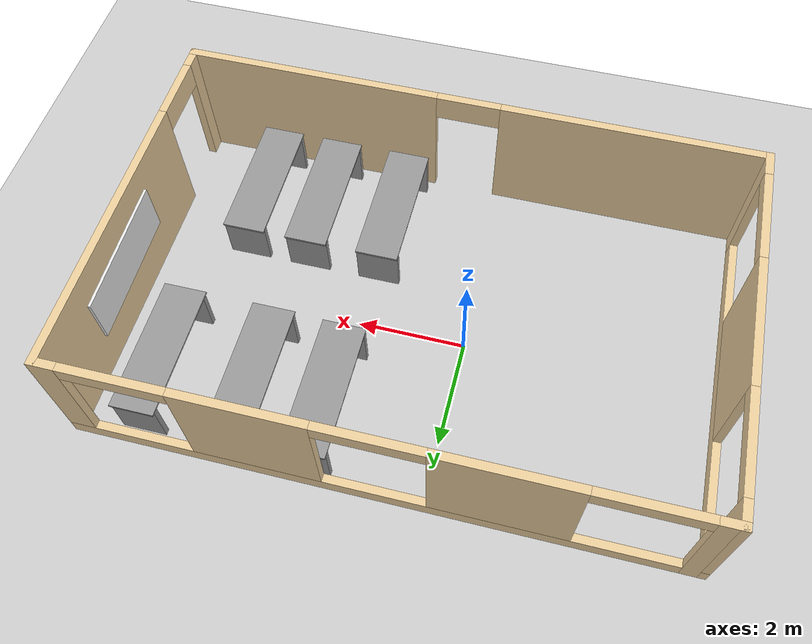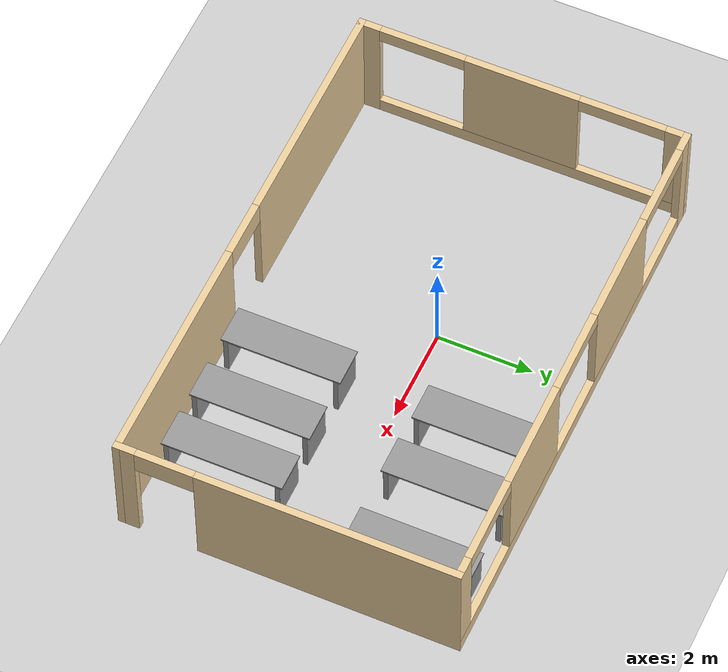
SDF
<sdf version="1.6">
 <world name="default">
  <model name="ground_plane">
   <static>1</static>
   <link name="link">
    <collision name="collision">
     <geometry><plane><normal>0 0 1</normal><size>100 100</size></plane></geometry>
     <surface><friction><ode><mu>100</mu><mu2>50</mu2></ode></friction></surface>
    </collision>
    <visual name="visual">
     <cast_shadows>0</cast_shadows>
     <geometry><plane><normal>0 0 1</normal><size>100 100</size></plane></geometry>
     <material>
      <script><uri>file://media/materials/scripts/gazebo.material</uri><name>Gazebo/Grey</name></script>
     </material>
    </visual>
   </link>
  </model>
  <model name="labAlfa4">
   <pose>0.76702 -0.263718 0 0 -0 0</pose>
   <link name="Wall_25">
    <pose>-5.425 0 0 0 -0 1.5708</pose>
    <visual name="Wall_25_Visual_0">
     <pose>-3.25328 0 1.25 0 -0 0</pose>
     <geometry><box><size>0.493444 0.15 2.5</size></box></geometry>
     <material>
      <script><uri>file://media/materials/scripts/gazebo.material</uri><name>Gazebo/Grey</name></script>
      <ambient>0.921569 0.807843 0.615686 1</ambient>
     </material>
    </visual>
    <collision name="Wall_25_Collision_0">
     <geometry><box><size>0.493444 0.15 2.5</size></box></geometry>
     <pose>-3.25328 0 1.25 0 -0 0</pose>
    </collision>
    <visual name="Wall_25_Visual_1">
     <pose>0.246722 0 0.15 0 -0 0</pose>
     <geometry><box><size>6.50656 0.15 0.3</size></box></geometry>
     <material>
      <script><uri>file://media/materials/scripts/gazebo.material</uri><name>Gazebo/Grey</name></script>
      <ambient>0.921569 0.807843 0.615686 1</ambient>
     </material>
    </visual>
    <collision name="Wall_25_Collision_1">
     <geometry><box><size>6.50656 0.15 0.3</size></box></geometry>
     <pose>0.246722 0 0.15 0 -0 0</pose>
    </collision>
    <visual name="Wall_25_Visual_2">
     <pose>-0.00167 0 1.4 0 -0 0</pose>
     <geometry><box><size>2.40977 0.15 2.2</size></box></geometry>
     <material>
      <script><uri>file://media/materials/scripts/gazebo.material</uri><name>Gazebo/Grey</name></script>
      <ambient>0.921569 0.807843 0.615686 1</ambient>
     </material>
    </visual>
    <collision name="Wall_25_Collision_2">
     <geometry><box><size>2.40977 0.15 2.2</size></box></geometry>
     <pose>-0.00167 0 1.4 0 -0 0</pose>
    </collision>
    <visual name="Wall_25_Visual_3">
     <pose>3.25161 0 1.4 0 -0 0</pose>
     <geometry><box><size>0.496785 0.15 2.2</size></box></geometry>
     <material>
      <script><uri>file://media/materials/scripts/gazebo.material</uri><name>Gazebo/Grey</name></script>
      <ambient>0.921569 0.807843 0.615686 1</ambient>
     </material>
    </visual>
    <collision name="Wall_25_Collision_3">
     <geometry><box><size>0.496785 0.15 2.2</size></box></geometry>
     <pose>3.25161 0 1.4 0 -0 0</pose>
    </collision>
    <visual name="Wall_25_Visual_4">
     <pose>-2.10656 0 2.35 0 -0 0</pose>
     <geometry><box><size>1.8 0.15 0.3</size></box></geometry>
     <material>
      <script><uri>file://media/materials/scripts/gazebo.material</uri><name>Gazebo/Grey</name></script>
      <ambient>0.921569 0.807843 0.615686 1</ambient>
     </material>
    </visual>
    <collision name="Wall_25_Collision_4">
     <geometry><box><size>1.8 0.15 0.3</size></box></geometry>
     <pose>-2.10656 0 2.35 0 -0 0</pose>
    </collision>
    <visual name="Wall_25_Visual_5">
     <pose>2.10322 0 2.35 0 -0 0</pose>
     <geometry><box><size>1.8 0.15 0.3</size></box></geometry>
     <material>
      <script><uri>file://media/materials/scripts/gazebo.material</uri><name>Gazebo/Grey</name></script>
      <ambient>0.921569 0.807843 0.615686 1</ambient>
     </material>
    </visual>
    <collision name="Wall_25_Collision_5">
     <geometry><box><size>1.8 0.15 0.3</size></box></geometry>
     <pose>2.10322 0 2.35 0 -0 0</pose>
    </collision>
   </link>
   <link name="Wall_26">
    <pose>0 3.425 0 0 -0 0</pose>
    <visual name="Wall_26_Visual_0">
     <pose>-5.27641 0 1.25 0 -0 0</pose>
     <geometry><box><size>0.447183 0.15 2.5</size></box></geometry>
     <material>
      <script><uri>file://media/materials/scripts/gazebo.material</uri><name>Gazebo/Grey</name></script>
      <ambient>0.921569 0.807843 0.615686 1</ambient>
     </material>
    </visual>
    <collision name="Wall_26_Collision_0">
     <geometry><box><size>0.447183 0.15 2.5</size></box></geometry>
     <pose>-5.27641 0 1.25 0 -0 0</pose>
    </collision>
    <visual name="Wall_26_Visual_1">
     <pose>0.223592 0 0.15 0 -0 0</pose>
     <geometry><box><size>10.5528 0.15 0.3</size></box></geometry>
     <material>
      <script><uri>file://media/materials/scripts/gazebo.material</uri><name>Gazebo/Grey</name></script>
      <ambient>0.921569 0.807843 0.615686 1</ambient>
     </material>
    </visual>
    <collision name="Wall_26_Collision_1">
     <geometry><box><size>10.5528 0.15 0.3</size></box></geometry>
     <pose>0.223592 0 0.15 0 -0 0</pose>
    </collision>
    <visual name="Wall_26_Visual_2">
     <pose>-2.04793 0 1.4 0 -0 0</pose>
     <geometry><box><size>2.40977 0.15 2.2</size></box></geometry>
     <material>
      <script><uri>file://media/materials/scripts/gazebo.material</uri><name>Gazebo/Grey</name></script>
      <ambient>0.921569 0.807843 0.615686 1</ambient>
     </material>
    </visual>
    <collision name="Wall_26_Collision_2">
     <geometry><box><size>2.40977 0.15 2.2</size></box></geometry>
     <pose>-2.04793 0 1.4 0 -0 0</pose>
    </collision>
    <visual name="Wall_26_Visual_3">
     <pose>2.09245 0 1.4 0 -0 0</pose>
     <geometry><box><size>2.27099 0.15 2.2</size></box></geometry>
     <material>
      <script><uri>file://media/materials/scripts/gazebo.material</uri><name>Gazebo/Grey</name></script>
      <ambient>0.921569 0.807843 0.615686 1</ambient>
     </material>
    </visual>
    <collision name="Wall_26_Collision_3">
     <geometry><box><size>2.27099 0.15 2.2</size></box></geometry>
     <pose>2.09245 0 1.4 0 -0 0</pose>
    </collision>
    <visual name="Wall_26_Visual_4">
     <pose>5.26397 0 1.4 0 -0 0</pose>
     <geometry><box><size>0.472059 0.15 2.2</size></box></geometry>
     <material>
      <script><uri>file://media/materials/scripts/gazebo.material</uri><name>Gazebo/Grey</name></script>
      <ambient>0.921569 0.807843 0.615686 1</ambient>
     </material>
    </visual>
    <collision name="Wall_26_Collision_4">
     <geometry><box><size>0.472059 0.15 2.2</size></box></geometry>
     <pose>5.26397 0 1.4 0 -0 0</pose>
    </collision>
    <visual name="Wall_26_Visual_5">
     <pose>-4.15282 0 2.35 0 -0 0</pose>
     <geometry><box><size>1.8 0.15 0.3</size></box></geometry>
     <material>
      <script><uri>file://media/materials/scripts/gazebo.material</uri><name>Gazebo/Grey</name></script>
      <ambient>0.921569 0.807843 0.615686 1</ambient>
     </material>
    </visual>
    <collision name="Wall_26_Collision_5">
     <geometry><box><size>1.8 0.15 0.3</size></box></geometry>
     <pose>-4.15282 0 2.35 0 -0 0</pose>
    </collision>
    <visual name="Wall_26_Visual_6">
     <pose>0.056954 0 2.35 0 -0 0</pose>
     <geometry><box><size>1.8 0.15 0.3</size></box></geometry>
     <material>
      <script><uri>file://media/materials/scripts/gazebo.material</uri><name>Gazebo/Grey</name></script>
      <ambient>0.921569 0.807843 0.615686 1</ambient>
     </material>
    </visual>
    <collision name="Wall_26_Collision_6">
     <geometry><box><size>1.8 0.15 0.3</size></box></geometry>
     <pose>0.056954 0 2.35 0 -0 0</pose>
    </collision>
    <visual name="Wall_26_Visual_7">
     <pose>4.12794 0 2.35 0 -0 0</pose>
     <geometry><box><size>1.8 0.15 0.3</size></box></geometry>
     <material>
      <script><uri>file://media/materials/scripts/gazebo.material</uri><name>Gazebo/Grey</name></script>
      <ambient>0.921569 0.807843 0.615686 1</ambient>
     </material>
    </visual>
    <collision name="Wall_26_Collision_7">
     <geometry><box><size>1.8 0.15 0.3</size></box></geometry>
     <pose>4.12794 0 2.35 0 -0 0</pose>
    </collision>
   </link>
   <link name="Wall_27">
    <pose>5.425 0 0 0 0 -1.5708</pose>
    <visual name="Wall_27_Visual_0">
     <pose>-0.823243 0 1.25 0 -0 0</pose>
     <geometry><box><size>5.35351 0.15 2.5</size></box></geometry>
     <material>
      <script><uri>file://media/materials/scripts/gazebo.material</uri><name>Gazebo/Grey</name></script>
      <ambient>0.921569 0.807843 0.615686 1</ambient>
     </material>
    </visual>
    <collision name="Wall_27_Collision_0">
     <geometry><box><size>5.35351 0.15 2.5</size></box></geometry>
     <pose>-0.823243 0 1.25 0 -0 0</pose>
    </collision>
    <visual name="Wall_27_Visual_1">
     <pose>3.27676 0 1.25 0 -0 0</pose>
     <geometry><box><size>0.446485 0.15 2.5</size></box></geometry>
     <material>
      <script><uri>file://media/materials/scripts/gazebo.material</uri><name>Gazebo/Grey</name></script>
      <ambient>0.921569 0.807843 0.615686 1</ambient>
     </material>
    </visual>
    <collision name="Wall_27_Collision_1">
     <geometry><box><size>0.446485 0.15 2.5</size></box></geometry>
     <pose>3.27676 0 1.25 0 -0 0</pose>
    </collision>
    <visual name="Wall_27_Visual_2">
     <pose>2.45351 0 2.25 0 -0 0</pose>
     <geometry><box><size>1.2 0.15 0.5</size></box></geometry>
     <material>
      <script><uri>file://media/materials/scripts/gazebo.material</uri><name>Gazebo/Grey</name></script>
      <ambient>0.921569 0.807843 0.615686 1</ambient>
     </material>
    </visual>
    <collision name="Wall_27_Collision_2">
     <geometry><box><size>1.2 0.15 0.5</size></box></geometry>
     <pose>2.45351 0 2.25 0 -0 0</pose>
    </collision>
   </link>
   <link name="Wall_28">
    <pose>0 -3.425 0 0 -0 3.14159</pose>
    <visual name="Wall_28_Visual_0">
     <pose>-3.06691 0 1.25 0 -0 0</pose>
     <geometry><box><size>4.86618 0.15 2.5</size></box></geometry>
     <material>
      <script><uri>file://media/materials/scripts/gazebo.material</uri><name>Gazebo/Grey</name></script>
      <ambient>0.921569 0.807843 0.615686 1</ambient>
     </material>
    </visual>
    <collision name="Wall_28_Collision_0">
     <geometry><box><size>4.86618 0.15 2.5</size></box></geometry>
     <pose>-3.06691 0 1.25 0 -0 0</pose>
    </collision>
    <visual name="Wall_28_Visual_1">
     <pose>3.03309 0 1.25 0 -0 0</pose>
     <geometry><box><size>4.93382 0.15 2.5</size></box></geometry>
     <material>
      <script><uri>file://media/materials/scripts/gazebo.material</uri><name>Gazebo/Grey</name></script>
      <ambient>0.921569 0.807843 0.615686 1</ambient>
     </material>
    </visual>
    <collision name="Wall_28_Collision_1">
     <geometry><box><size>4.93382 0.15 2.5</size></box></geometry>
     <pose>3.03309 0 1.25 0 -0 0</pose>
    </collision>
    <visual name="Wall_28_Visual_2">
     <pose>-0.033823 0 2.25 0 -0 0</pose>
     <geometry><box><size>1.2 0.15 0.5</size></box></geometry>
     <material>
      <script><uri>file://media/materials/scripts/gazebo.material</uri><name>Gazebo/Grey</name></script>
      <ambient>0.921569 0.807843 0.615686 1</ambient>
     </material>
    </visual>
    <collision name="Wall_28_Collision_2">
     <geometry><box><size>1.2 0.15 0.5</size></box></geometry>
     <pose>-0.033823 0 2.25 0 -0 0</pose>
    </collision>
   </link>
   <static>1</static>
  </model>
  <model name="table_clone_2_clone">
   <link name="link">
    <inertial>
     <inertia><ixx>1</ixx><ixy>0</ixy><ixz>0</ixz><iyy>1</iyy><iyz>0</iyz><izz>1</izz></inertia>
     <mass>10</mass>
    </inertial>
    <visual name="visual1">
     <pose>0 0 0.95 0 -0 0</pose>
     <geometry><box><size>2.5 0.8 0.04</size></box></geometry>
     <material>
      <script><uri>file://media/materials/scripts/gazebo.material</uri><name>Gazebo/Grey</name></script>
      <ambient>1 1 1 1</ambient>
      <diffuse>1 1 1 1</diffuse>
      <specular>0.2 0.2 0.2 1</specular>
      <emissive>0 0 0 1</emissive>
      <shader type="vertex"><normal_map>__default__</normal_map></shader>
     </material>
    </visual>
    <visual name="ModelPreview_1::link::visual_12">
     <pose>1.15 0 0.5 0 -0 0</pose>
     <geometry><box><size>0.1 0.8 0.9</size></box></geometry>
     <material>
      <script><uri>file://media/materials/scripts/gazebo.material</uri><name>Gazebo/Grey</name></script>
      <ambient>0.3 0.3 0.3 1</ambient>
      <diffuse>0.7 0.7 0.7 1</diffuse>
      <specular>0.01 0.01 0.01 1</specular>
      <emissive>0 0 0 1</emissive>
      <shader type="vertex"><normal_map>__default__</normal_map></shader>
     </material>
    </visual>
    <visual name="back_right_leg">
     <pose>-1.15 0 0.5 0 -0 0</pose>
     <geometry><box><size>0.1 0.8 0.9</size></box></geometry>
     <material>
      <script><uri>file://media/materials/scripts/gazebo.material</uri><name>Gazebo/Grey</name></script>
      <ambient>0.3 0.3 0.3 1</ambient>
      <diffuse>0.7 0.7 0.7 1</diffuse>
      <specular>0.01 0.01 0.01 1</specular>
      <emissive>0 0 0 1</emissive>
      <shader type="vertex"><normal_map>__default__</normal_map></shader>
     </material>
    </visual>
    <collision name="collision_7">
     <pose>1.15 0 0.5 0 -0 0</pose>
     <geometry><box><size>0.1 0.8 0.9</size></box></geometry>
     <surface>
      <friction>
       <ode><mu>1</mu><mu2>1</mu2><fdir1>0 0 0</fdir1><slip1>0</slip1><slip2>0</slip2></ode>
       <torsional>
        <coefficient>1</coefficient>
        <patch_radius>0</patch_radius>
        <surface_radius>0</surface_radius>
        <use_patch_radius>1</use_patch_radius>
        <ode><slip>0</slip></ode>
       </torsional>
      </friction>
      <bounce><restitution_coefficient>0</restitution_coefficient><threshold>1e+06</threshold></bounce>
      <contact>
       <collide_without_contact>0</collide_without_contact>
       <collide_without_contact_bitmask>1</collide_without_contact_bitmask>
       <collide_bitmask>1</collide_bitmask>
       <ode>
        <soft_cfm>0</soft_cfm>
        <soft_erp>0.2</soft_erp>
        <kp>1e+13</kp>
        <kd>1</kd>
        <max_vel>0.01</max_vel>
        <min_depth>0</min_depth>
       </ode>
       <bullet>
        <split_impulse>1</split_impulse>
        <split_impulse_penetration_threshold>-0.01</split_impulse_penetration_threshold>
        <soft_cfm>0</soft_cfm>
        <soft_erp>0.2</soft_erp>
        <kp>1e+13</kp>
        <kd>1</kd>
       </bullet>
      </contact>
     </surface>
    </collision>
    <collision name="surface">
     <pose>0 0 0.95 0 -0 0</pose>
     <geometry><box><size>2.5 0.8 0.03</size></box></geometry>
     <surface>
      <friction>
       <ode><mu>0.6</mu><mu2>0.6</mu2><fdir1>0 0 0</fdir1><slip1>0</slip1><slip2>0</slip2></ode>
       <torsional>
        <coefficient>1</coefficient>
        <patch_radius>0</patch_radius>
        <surface_radius>0</surface_radius>
        <use_patch_radius>1</use_patch_radius>
        <ode><slip>0</slip></ode>
       </torsional>
      </friction>
      <bounce><restitution_coefficient>0</restitution_coefficient><threshold>1e+06</threshold></bounce>
      <contact>
       <collide_without_contact>0</collide_without_contact>
       <collide_without_contact_bitmask>1</collide_without_contact_bitmask>
       <collide_bitmask>1</collide_bitmask>
       <ode>
        <soft_cfm>0</soft_cfm>
        <soft_erp>0.2</soft_erp>
        <kp>1e+13</kp>
        <kd>1</kd>
        <max_vel>0.01</max_vel>
        <min_depth>0</min_depth>
       </ode>
       <bullet>
        <split_impulse>1</split_impulse>
        <split_impulse_penetration_threshold>-0.01</split_impulse_penetration_threshold>
        <soft_cfm>0</soft_cfm>
        <soft_erp>0.2</soft_erp>
        <kp>1e+13</kp>
        <kd>1</kd>
       </bullet>
      </contact>
     </surface>
    </collision>
    <collision name="collision_5">
     <pose>-1.15 0 0.5 0 -0 0</pose>
     <geometry><box><size>0.1 0.8 0.9</size></box></geometry>
     <surface>
      <friction>
       <ode><mu>1</mu><mu2>1</mu2><fdir1>0 0 0</fdir1><slip1>0</slip1><slip2>0</slip2></ode>
       <torsional>
        <coefficient>1</coefficient>
        <patch_radius>0</patch_radius>
        <surface_radius>0</surface_radius>
        <use_patch_radius>1</use_patch_radius>
        <ode><slip>0</slip></ode>
       </torsional>
      </friction>
      <bounce><restitution_coefficient>0</restitution_coefficient><threshold>1e+06</threshold></bounce>
      <contact>
       <collide_without_contact>0</collide_without_contact>
       <collide_without_contact_bitmask>1</collide_without_contact_bitmask>
       <collide_bitmask>1</collide_bitmask>
       <ode>
        <soft_cfm>0</soft_cfm>
        <soft_erp>0.2</soft_erp>
        <kp>1e+13</kp>
        <kd>1</kd>
        <max_vel>0.01</max_vel>
        <min_depth>0</min_depth>
       </ode>
       <bullet>
        <split_impulse>1</split_impulse>
        <split_impulse_penetration_threshold>-0.01</split_impulse_penetration_threshold>
        <soft_cfm>0</soft_cfm>
        <soft_erp>0.2</soft_erp>
        <kp>1e+13</kp>
        <kd>1</kd>
       </bullet>
      </contact>
     </surface>
    </collision>
   </link>
   <static>0</static>
   <pose>4.5122 -2.24052 -0.050008 -2e-05 -0 -1.57004</pose>
  </model>
  <model name="table_clone_2_clone_0">
   <link name="link">
    <inertial>
     <inertia><ixx>1</ixx><ixy>0</ixy><ixz>0</ixz><iyy>1</iyy><iyz>0</iyz><izz>1</izz></inertia>
     <mass>10</mass>
    </inertial>
    <visual name="visual1">
     <pose>0 0 0.95 0 -0 0</pose>
     <geometry><box><size>2.5 0.8 0.04</size></box></geometry>
     <material>
      <script><uri>file://media/materials/scripts/gazebo.material</uri><name>Gazebo/Grey</name></script>
      <ambient>1 1 1 1</ambient>
      <diffuse>1 1 1 1</diffuse>
      <specular>0.2 0.2 0.2 1</specular>
      <emissive>0 0 0 1</emissive>
      <shader type="vertex"><normal_map>__default__</normal_map></shader>
     </material>
    </visual>
    <visual name="ModelPreview_1::link::visual_12">
     <pose>1.15 0 0.5 0 -0 0</pose>
     <geometry><box><size>0.1 0.8 0.9</size></box></geometry>
     <material>
      <script><uri>file://media/materials/scripts/gazebo.material</uri><name>Gazebo/Grey</name></script>
      <ambient>0.3 0.3 0.3 1</ambient>
      <diffuse>0.7 0.7 0.7 1</diffuse>
      <specular>0.01 0.01 0.01 1</specular>
      <emissive>0 0 0 1</emissive>
      <shader type="vertex"><normal_map>__default__</normal_map></shader>
     </material>
    </visual>
    <visual name="back_right_leg">
     <pose>-1.15 0 0.5 0 -0 0</pose>
     <geometry><box><size>0.1 0.8 0.9</size></box></geometry>
     <material>
      <script><uri>file://media/materials/scripts/gazebo.material</uri><name>Gazebo/Grey</name></script>
      <ambient>0.3 0.3 0.3 1</ambient>
      <diffuse>0.7 0.7 0.7 1</diffuse>
      <specular>0.01 0.01 0.01 1</specular>
      <emissive>0 0 0 1</emissive>
      <shader type="vertex"><normal_map>__default__</normal_map></shader>
     </material>
    </visual>
    <collision name="collision_7">
     <pose>1.15 0 0.5 0 -0 0</pose>
     <geometry><box><size>0.1 0.8 0.9</size></box></geometry>
     <surface>
      <friction>
       <ode><mu>1</mu><mu2>1</mu2><fdir1>0 0 0</fdir1><slip1>0</slip1><slip2>0</slip2></ode>
       <torsional>
        <coefficient>1</coefficient>
        <patch_radius>0</patch_radius>
        <surface_radius>0</surface_radius>
        <use_patch_radius>1</use_patch_radius>
        <ode><slip>0</slip></ode>
       </torsional>
      </friction>
      <bounce><restitution_coefficient>0</restitution_coefficient><threshold>1e+06</threshold></bounce>
      <contact>
       <collide_without_contact>0</collide_without_contact>
       <collide_without_contact_bitmask>1</collide_without_contact_bitmask>
       <collide_bitmask>1</collide_bitmask>
       <ode>
        <soft_cfm>0</soft_cfm>
        <soft_erp>0.2</soft_erp>
        <kp>1e+13</kp>
        <kd>1</kd>
        <max_vel>0.01</max_vel>
        <min_depth>0</min_depth>
       </ode>
       <bullet>
        <split_impulse>1</split_impulse>
        <split_impulse_penetration_threshold>-0.01</split_impulse_penetration_threshold>
        <soft_cfm>0</soft_cfm>
        <soft_erp>0.2</soft_erp>
        <kp>1e+13</kp>
        <kd>1</kd>
       </bullet>
      </contact>
     </surface>
    </collision>
    <collision name="surface">
     <pose>0 0 0.95 0 -0 0</pose>
     <geometry><box><size>2.5 0.8 0.03</size></box></geometry>
     <surface>
      <friction>
       <ode><mu>0.6</mu><mu2>0.6</mu2><fdir1>0 0 0</fdir1><slip1>0</slip1><slip2>0</slip2></ode>
       <torsional>
        <coefficient>1</coefficient>
        <patch_radius>0</patch_radius>
        <surface_radius>0</surface_radius>
        <use_patch_radius>1</use_patch_radius>
        <ode><slip>0</slip></ode>
       </torsional>
      </friction>
      <bounce><restitution_coefficient>0</restitution_coefficient><threshold>1e+06</threshold></bounce>
      <contact>
       <collide_without_contact>0</collide_without_contact>
       <collide_without_contact_bitmask>1</collide_without_contact_bitmask>
       <collide_bitmask>1</collide_bitmask>
       <ode>
        <soft_cfm>0</soft_cfm>
        <soft_erp>0.2</soft_erp>
        <kp>1e+13</kp>
        <kd>1</kd>
        <max_vel>0.01</max_vel>
        <min_depth>0</min_depth>
       </ode>
       <bullet>
        <split_impulse>1</split_impulse>
        <split_impulse_penetration_threshold>-0.01</split_impulse_penetration_threshold>
        <soft_cfm>0</soft_cfm>
        <soft_erp>0.2</soft_erp>
        <kp>1e+13</kp>
        <kd>1</kd>
       </bullet>
      </contact>
     </surface>
    </collision>
    <collision name="collision_5">
     <pose>-1.15 0 0.5 0 -0 0</pose>
     <geometry><box><size>0.1 0.8 0.9</size></box></geometry>
     <surface>
      <friction>
       <ode><mu>1</mu><mu2>1</mu2><fdir1>0 0 0</fdir1><slip1>0</slip1><slip2>0</slip2></ode>
       <torsional>
        <coefficient>1</coefficient>
        <patch_radius>0</patch_radius>
        <surface_radius>0</surface_radius>
        <use_patch_radius>1</use_patch_radius>
        <ode><slip>0</slip></ode>
       </torsional>
      </friction>
      <bounce><restitution_coefficient>0</restitution_coefficient><threshold>1e+06</threshold></bounce>
      <contact>
       <collide_without_contact>0</collide_without_contact>
       <collide_without_contact_bitmask>1</collide_without_contact_bitmask>
       <collide_bitmask>1</collide_bitmask>
       <ode>
        <soft_cfm>0</soft_cfm>
        <soft_erp>0.2</soft_erp>
        <kp>1e+13</kp>
        <kd>1</kd>
        <max_vel>0.01</max_vel>
        <min_depth>0</min_depth>
       </ode>
       <bullet>
        <split_impulse>1</split_impulse>
        <split_impulse_penetration_threshold>-0.01</split_impulse_penetration_threshold>
        <soft_cfm>0</soft_cfm>
        <soft_erp>0.2</soft_erp>
        <kp>1e+13</kp>
        <kd>1</kd>
       </bullet>
      </contact>
     </surface>
    </collision>
   </link>
   <static>0</static>
   <pose>5.07585 1.76138 -0.050008 -2e-05 -0 -1.57004</pose>
  </model>
  <model name="table_clone_2_clone_2">
   <link name="link">
    <inertial>
     <inertia><ixx>1</ixx><ixy>0</ixy><ixz>0</ixz><iyy>1</iyy><iyz>0</iyz><izz>1</izz></inertia>
     <mass>10</mass>
    </inertial>
    <visual name="visual1">
     <pose>0 0 0.95 0 -0 0</pose>
     <geometry><box><size>2.5 0.8 0.04</size></box></geometry>
     <material>
      <script><uri>file://media/materials/scripts/gazebo.material</uri><name>Gazebo/Grey</name></script>
      <ambient>1 1 1 1</ambient>
      <diffuse>1 1 1 1</diffuse>
      <specular>0.2 0.2 0.2 1</specular>
      <emissive>0 0 0 1</emissive>
      <shader type="vertex"><normal_map>__default__</normal_map></shader>
     </material>
    </visual>
    <visual name="ModelPreview_1::link::visual_12">
     <pose>1.15 0 0.5 0 -0 0</pose>
     <geometry><box><size>0.1 0.8 0.9</size></box></geometry>
     <material>
      <script><uri>file://media/materials/scripts/gazebo.material</uri><name>Gazebo/Grey</name></script>
      <ambient>0.3 0.3 0.3 1</ambient>
      <diffuse>0.7 0.7 0.7 1</diffuse>
      <specular>0.01 0.01 0.01 1</specular>
      <emissive>0 0 0 1</emissive>
      <shader type="vertex"><normal_map>__default__</normal_map></shader>
     </material>
    </visual>
    <visual name="back_right_leg">
     <pose>-1.15 0 0.5 0 -0 0</pose>
     <geometry><box><size>0.1 0.8 0.9</size></box></geometry>
     <material>
      <script><uri>file://media/materials/scripts/gazebo.material</uri><name>Gazebo/Grey</name></script>
      <ambient>0.3 0.3 0.3 1</ambient>
      <diffuse>0.7 0.7 0.7 1</diffuse>
      <specular>0.01 0.01 0.01 1</specular>
      <emissive>0 0 0 1</emissive>
      <shader type="vertex"><normal_map>__default__</normal_map></shader>
     </material>
    </visual>
    <collision name="collision_7">
     <pose>1.15 0 0.5 0 -0 0</pose>
     <geometry><box><size>0.1 0.8 0.9</size></box></geometry>
     <surface>
      <friction>
       <ode><mu>1</mu><mu2>1</mu2><fdir1>0 0 0</fdir1><slip1>0</slip1><slip2>0</slip2></ode>
       <torsional>
        <coefficient>1</coefficient>
        <patch_radius>0</patch_radius>
        <surface_radius>0</surface_radius>
        <use_patch_radius>1</use_patch_radius>
        <ode><slip>0</slip></ode>
       </torsional>
      </friction>
      <bounce><restitution_coefficient>0</restitution_coefficient><threshold>1e+06</threshold></bounce>
      <contact>
       <collide_without_contact>0</collide_without_contact>
       <collide_without_contact_bitmask>1</collide_without_contact_bitmask>
       <collide_bitmask>1</collide_bitmask>
       <ode>
        <soft_cfm>0</soft_cfm>
        <soft_erp>0.2</soft_erp>
        <kp>1e+13</kp>
        <kd>1</kd>
        <max_vel>0.01</max_vel>
        <min_depth>0</min_depth>
       </ode>
       <bullet>
        <split_impulse>1</split_impulse>
        <split_impulse_penetration_threshold>-0.01</split_impulse_penetration_threshold>
        <soft_cfm>0</soft_cfm>
        <soft_erp>0.2</soft_erp>
        <kp>1e+13</kp>
        <kd>1</kd>
       </bullet>
      </contact>
     </surface>
    </collision>
    <collision name="surface">
     <pose>0 0 0.95 0 -0 0</pose>
     <geometry><box><size>2.5 0.8 0.03</size></box></geometry>
     <surface>
      <friction>
       <ode><mu>0.6</mu><mu2>0.6</mu2><fdir1>0 0 0</fdir1><slip1>0</slip1><slip2>0</slip2></ode>
       <torsional>
        <coefficient>1</coefficient>
        <patch_radius>0</patch_radius>
        <surface_radius>0</surface_radius>
        <use_patch_radius>1</use_patch_radius>
        <ode><slip>0</slip></ode>
       </torsional>
      </friction>
      <bounce><restitution_coefficient>0</restitution_coefficient><threshold>1e+06</threshold></bounce>
      <contact>
       <collide_without_contact>0</collide_without_contact>
       <collide_without_contact_bitmask>1</collide_without_contact_bitmask>
       <collide_bitmask>1</collide_bitmask>
       <ode>
        <soft_cfm>0</soft_cfm>
        <soft_erp>0.2</soft_erp>
        <kp>1e+13</kp>
        <kd>1</kd>
        <max_vel>0.01</max_vel>
        <min_depth>0</min_depth>
       </ode>
       <bullet>
        <split_impulse>1</split_impulse>
        <split_impulse_penetration_threshold>-0.01</split_impulse_penetration_threshold>
        <soft_cfm>0</soft_cfm>
        <soft_erp>0.2</soft_erp>
        <kp>1e+13</kp>
        <kd>1</kd>
       </bullet>
      </contact>
     </surface>
    </collision>
    <collision name="collision_5">
     <pose>-1.15 0 0.5 0 -0 0</pose>
     <geometry><box><size>0.1 0.8 0.9</size></box></geometry>
     <surface>
      <friction>
       <ode><mu>1</mu><mu2>1</mu2><fdir1>0 0 0</fdir1><slip1>0</slip1><slip2>0</slip2></ode>
       <torsional>
        <coefficient>1</coefficient>
        <patch_radius>0</patch_radius>
        <surface_radius>0</surface_radius>
        <use_patch_radius>1</use_patch_radius>
        <ode><slip>0</slip></ode>
       </torsional>
      </friction>
      <bounce><restitution_coefficient>0</restitution_coefficient><threshold>1e+06</threshold></bounce>
      <contact>
       <collide_without_contact>0</collide_without_contact>
       <collide_without_contact_bitmask>1</collide_without_contact_bitmask>
       <collide_bitmask>1</collide_bitmask>
       <ode>
        <soft_cfm>0</soft_cfm>
        <soft_erp>0.2</soft_erp>
        <kp>1e+13</kp>
        <kd>1</kd>
        <max_vel>0.01</max_vel>
        <min_depth>0</min_depth>
       </ode>
       <bullet>
        <split_impulse>1</split_impulse>
        <split_impulse_penetration_threshold>-0.01</split_impulse_penetration_threshold>
        <soft_cfm>0</soft_cfm>
        <soft_erp>0.2</soft_erp>
        <kp>1e+13</kp>
        <kd>1</kd>
       </bullet>
      </contact>
     </surface>
    </collision>
   </link>
   <static>0</static>
   <pose>2.05961 1.80575 -0.050008 -2e-05 -0 -1.57004</pose>
  </model>
  <model name="table_clone_2_clone_clone">
   <link name="link">
    <inertial>
     <inertia><ixx>1</ixx><ixy>0</ixy><ixz>0</ixz><iyy>1</iyy><iyz>0</iyz><izz>1</izz></inertia>
     <mass>10</mass>
    </inertial>
    <visual name="visual1">
     <pose>0 0 0.95 0 -0 0</pose>
     <geometry><box><size>2.5 0.8 0.04</size></box></geometry>
     <material>
      <script><uri>file://media/materials/scripts/gazebo.material</uri><name>Gazebo/Grey</name></script>
      <ambient>1 1 1 1</ambient>
      <diffuse>1 1 1 1</diffuse>
      <specular>0.2 0.2 0.2 1</specular>
      <emissive>0 0 0 1</emissive>
      <shader type="vertex"><normal_map>__default__</normal_map></shader>
     </material>
    </visual>
    <visual name="ModelPreview_1::link::visual_12">
     <pose>1.15 0 0.5 0 -0 0</pose>
     <geometry><box><size>0.1 0.8 0.9</size></box></geometry>
     <material>
      <script><uri>file://media/materials/scripts/gazebo.material</uri><name>Gazebo/Grey</name></script>
      <ambient>0.3 0.3 0.3 1</ambient>
      <diffuse>0.7 0.7 0.7 1</diffuse>
      <specular>0.01 0.01 0.01 1</specular>
      <emissive>0 0 0 1</emissive>
      <shader type="vertex"><normal_map>__default__</normal_map></shader>
     </material>
    </visual>
    <visual name="back_right_leg">
     <pose>-1.15 0 0.5 0 -0 0</pose>
     <geometry><box><size>0.1 0.8 0.9</size></box></geometry>
     <material>
      <script><uri>file://media/materials/scripts/gazebo.material</uri><name>Gazebo/Grey</name></script>
      <ambient>0.3 0.3 0.3 1</ambient>
      <diffuse>0.7 0.7 0.7 1</diffuse>
      <specular>0.01 0.01 0.01 1</specular>
      <emissive>0 0 0 1</emissive>
      <shader type="vertex"><normal_map>__default__</normal_map></shader>
     </material>
    </visual>
    <collision name="collision_7">
     <pose>1.15 0 0.5 0 -0 0</pose>
     <geometry><box><size>0.1 0.8 0.9</size></box></geometry>
     <surface>
      <friction>
       <ode><mu>1</mu><mu2>1</mu2><fdir1>0 0 0</fdir1><slip1>0</slip1><slip2>0</slip2></ode>
       <torsional>
        <coefficient>1</coefficient>
        <patch_radius>0</patch_radius>
        <surface_radius>0</surface_radius>
        <use_patch_radius>1</use_patch_radius>
        <ode><slip>0</slip></ode>
       </torsional>
      </friction>
      <bounce><restitution_coefficient>0</restitution_coefficient><threshold>1e+06</threshold></bounce>
      <contact>
       <collide_without_contact>0</collide_without_contact>
       <collide_without_contact_bitmask>1</collide_without_contact_bitmask>
       <collide_bitmask>1</collide_bitmask>
       <ode>
        <soft_cfm>0</soft_cfm>
        <soft_erp>0.2</soft_erp>
        <kp>1e+13</kp>
        <kd>1</kd>
        <max_vel>0.01</max_vel>
        <min_depth>0</min_depth>
       </ode>
       <bullet>
        <split_impulse>1</split_impulse>
        <split_impulse_penetration_threshold>-0.01</split_impulse_penetration_threshold>
        <soft_cfm>0</soft_cfm>
        <soft_erp>0.2</soft_erp>
        <kp>1e+13</kp>
        <kd>1</kd>
       </bullet>
      </contact>
     </surface>
    </collision>
    <collision name="surface">
     <pose>0 0 0.95 0 -0 0</pose>
     <geometry><box><size>2.5 0.8 0.03</size></box></geometry>
     <surface>
      <friction>
       <ode><mu>0.6</mu><mu2>0.6</mu2><fdir1>0 0 0</fdir1><slip1>0</slip1><slip2>0</slip2></ode>
       <torsional>
        <coefficient>1</coefficient>
        <patch_radius>0</patch_radius>
        <surface_radius>0</surface_radius>
        <use_patch_radius>1</use_patch_radius>
        <ode><slip>0</slip></ode>
       </torsional>
      </friction>
      <bounce><restitution_coefficient>0</restitution_coefficient><threshold>1e+06</threshold></bounce>
      <contact>
       <collide_without_contact>0</collide_without_contact>
       <collide_without_contact_bitmask>1</collide_without_contact_bitmask>
       <collide_bitmask>1</collide_bitmask>
       <ode>
        <soft_cfm>0</soft_cfm>
        <soft_erp>0.2</soft_erp>
        <kp>1e+13</kp>
        <kd>1</kd>
        <max_vel>0.01</max_vel>
        <min_depth>0</min_depth>
       </ode>
       <bullet>
        <split_impulse>1</split_impulse>
        <split_impulse_penetration_threshold>-0.01</split_impulse_penetration_threshold>
        <soft_cfm>0</soft_cfm>
        <soft_erp>0.2</soft_erp>
        <kp>1e+13</kp>
        <kd>1</kd>
       </bullet>
      </contact>
     </surface>
    </collision>
    <collision name="collision_5">
     <pose>-1.15 0 0.5 0 -0 0</pose>
     <geometry><box><size>0.1 0.8 0.9</size></box></geometry>
     <surface>
      <friction>
       <ode><mu>1</mu><mu2>1</mu2><fdir1>0 0 0</fdir1><slip1>0</slip1><slip2>0</slip2></ode>
       <torsional>
        <coefficient>1</coefficient>
        <patch_radius>0</patch_radius>
        <surface_radius>0</surface_radius>
        <use_patch_radius>1</use_patch_radius>
        <ode><slip>0</slip></ode>
       </torsional>
      </friction>
      <bounce><restitution_coefficient>0</restitution_coefficient><threshold>1e+06</threshold></bounce>
      <contact>
       <collide_without_contact>0</collide_without_contact>
       <collide_without_contact_bitmask>1</collide_without_contact_bitmask>
       <collide_bitmask>1</collide_bitmask>
       <ode>
        <soft_cfm>0</soft_cfm>
        <soft_erp>0.2</soft_erp>
        <kp>1e+13</kp>
        <kd>1</kd>
        <max_vel>0.01</max_vel>
        <min_depth>0</min_depth>
       </ode>
       <bullet>
        <split_impulse>1</split_impulse>
        <split_impulse_penetration_threshold>-0.01</split_impulse_penetration_threshold>
        <soft_cfm>0</soft_cfm>
        <soft_erp>0.2</soft_erp>
        <kp>1e+13</kp>
        <kd>1</kd>
       </bullet>
      </contact>
     </surface>
    </collision>
   </link>
   <static>0</static>
   <pose>3.29534 -2.23588 -0.050008 -2e-05 -0 -1.57008</pose>
  </model>
  <model name="table_clone_2_clone_clone_1">
   <link name="link">
    <inertial>
     <inertia><ixx>1</ixx><ixy>0</ixy><ixz>0</ixz><iyy>1</iyy><iyz>0</iyz><izz>1</izz></inertia>
     <mass>10</mass>
    </inertial>
    <visual name="visual1">
     <pose>0 0 0.95 0 -0 0</pose>
     <geometry><box><size>2.5 0.8 0.04</size></box></geometry>
     <material>
      <script><uri>file://media/materials/scripts/gazebo.material</uri><name>Gazebo/Grey</name></script>
      <ambient>1 1 1 1</ambient>
      <diffuse>1 1 1 1</diffuse>
      <specular>0.2 0.2 0.2 1</specular>
      <emissive>0 0 0 1</emissive>
      <shader type="vertex"><normal_map>__default__</normal_map></shader>
     </material>
    </visual>
    <visual name="ModelPreview_1::link::visual_12">
     <pose>1.15 0 0.5 0 -0 0</pose>
     <geometry><box><size>0.1 0.8 0.9</size></box></geometry>
     <material>
      <script><uri>file://media/materials/scripts/gazebo.material</uri><name>Gazebo/Grey</name></script>
      <ambient>0.3 0.3 0.3 1</ambient>
      <diffuse>0.7 0.7 0.7 1</diffuse>
      <specular>0.01 0.01 0.01 1</specular>
      <emissive>0 0 0 1</emissive>
      <shader type="vertex"><normal_map>__default__</normal_map></shader>
     </material>
    </visual>
    <visual name="back_right_leg">
     <pose>-1.15 0 0.5 0 -0 0</pose>
     <geometry><box><size>0.1 0.8 0.9</size></box></geometry>
     <material>
      <script><uri>file://media/materials/scripts/gazebo.material</uri><name>Gazebo/Grey</name></script>
      <ambient>0.3 0.3 0.3 1</ambient>
      <diffuse>0.7 0.7 0.7 1</diffuse>
      <specular>0.01 0.01 0.01 1</specular>
      <emissive>0 0 0 1</emissive>
      <shader type="vertex"><normal_map>__default__</normal_map></shader>
     </material>
    </visual>
    <collision name="collision_7">
     <pose>1.15 0 0.5 0 -0 0</pose>
     <geometry><box><size>0.1 0.8 0.9</size></box></geometry>
     <surface>
      <friction>
       <ode><mu>1</mu><mu2>1</mu2><fdir1>0 0 0</fdir1><slip1>0</slip1><slip2>0</slip2></ode>
       <torsional>
        <coefficient>1</coefficient>
        <patch_radius>0</patch_radius>
        <surface_radius>0</surface_radius>
        <use_patch_radius>1</use_patch_radius>
        <ode><slip>0</slip></ode>
       </torsional>
      </friction>
      <bounce><restitution_coefficient>0</restitution_coefficient><threshold>1e+06</threshold></bounce>
      <contact>
       <collide_without_contact>0</collide_without_contact>
       <collide_without_contact_bitmask>1</collide_without_contact_bitmask>
       <collide_bitmask>1</collide_bitmask>
       <ode>
        <soft_cfm>0</soft_cfm>
        <soft_erp>0.2</soft_erp>
        <kp>1e+13</kp>
        <kd>1</kd>
        <max_vel>0.01</max_vel>
        <min_depth>0</min_depth>
       </ode>
       <bullet>
        <split_impulse>1</split_impulse>
        <split_impulse_penetration_threshold>-0.01</split_impulse_penetration_threshold>
        <soft_cfm>0</soft_cfm>
        <soft_erp>0.2</soft_erp>
        <kp>1e+13</kp>
        <kd>1</kd>
       </bullet>
      </contact>
     </surface>
    </collision>
    <collision name="surface">
     <pose>0 0 0.95 0 -0 0</pose>
     <geometry><box><size>2.5 0.8 0.03</size></box></geometry>
     <surface>
      <friction>
       <ode><mu>0.6</mu><mu2>0.6</mu2><fdir1>0 0 0</fdir1><slip1>0</slip1><slip2>0</slip2></ode>
       <torsional>
        <coefficient>1</coefficient>
        <patch_radius>0</patch_radius>
        <surface_radius>0</surface_radius>
        <use_patch_radius>1</use_patch_radius>
        <ode><slip>0</slip></ode>
       </torsional>
      </friction>
      <bounce><restitution_coefficient>0</restitution_coefficient><threshold>1e+06</threshold></bounce>
      <contact>
       <collide_without_contact>0</collide_without_contact>
       <collide_without_contact_bitmask>1</collide_without_contact_bitmask>
       <collide_bitmask>1</collide_bitmask>
       <ode>
        <soft_cfm>0</soft_cfm>
        <soft_erp>0.2</soft_erp>
        <kp>1e+13</kp>
        <kd>1</kd>
        <max_vel>0.01</max_vel>
        <min_depth>0</min_depth>
       </ode>
       <bullet>
        <split_impulse>1</split_impulse>
        <split_impulse_penetration_threshold>-0.01</split_impulse_penetration_threshold>
        <soft_cfm>0</soft_cfm>
        <soft_erp>0.2</soft_erp>
        <kp>1e+13</kp>
        <kd>1</kd>
       </bullet>
      </contact>
     </surface>
    </collision>
    <collision name="collision_5">
     <pose>-1.15 0 0.5 0 -0 0</pose>
     <geometry><box><size>0.1 0.8 0.9</size></box></geometry>
     <surface>
      <friction>
       <ode><mu>1</mu><mu2>1</mu2><fdir1>0 0 0</fdir1><slip1>0</slip1><slip2>0</slip2></ode>
       <torsional>
        <coefficient>1</coefficient>
        <patch_radius>0</patch_radius>
        <surface_radius>0</surface_radius>
        <use_patch_radius>1</use_patch_radius>
        <ode><slip>0</slip></ode>
       </torsional>
      </friction>
      <bounce><restitution_coefficient>0</restitution_coefficient><threshold>1e+06</threshold></bounce>
      <contact>
       <collide_without_contact>0</collide_without_contact>
       <collide_without_contact_bitmask>1</collide_without_contact_bitmask>
       <collide_bitmask>1</collide_bitmask>
       <ode>
        <soft_cfm>0</soft_cfm>
        <soft_erp>0.2</soft_erp>
        <kp>1e+13</kp>
        <kd>1</kd>
        <max_vel>0.01</max_vel>
        <min_depth>0</min_depth>
       </ode>
       <bullet>
        <split_impulse>1</split_impulse>
        <split_impulse_penetration_threshold>-0.01</split_impulse_penetration_threshold>
        <soft_cfm>0</soft_cfm>
        <soft_erp>0.2</soft_erp>
        <kp>1e+13</kp>
        <kd>1</kd>
       </bullet>
      </contact>
     </surface>
    </collision>
   </link>
   <static>0</static>
   <pose>3.38776 1.76907 -0.050008 2e-05 -0 -1.56987</pose>
  </model>
  <model name="table_clone_2_clone_clone_clone">
   <link name="link">
    <inertial>
     <inertia><ixx>1</ixx><ixy>0</ixy><ixz>0</ixz><iyy>1</iyy><iyz>0</iyz><izz>1</izz></inertia>
     <mass>10</mass>
    </inertial>
    <visual name="visual1">
     <pose>0 0 0.95 0 -0 0</pose>
     <geometry><box><size>2.5 0.8 0.04</size></box></geometry>
     <material>
      <script><uri>file://media/materials/scripts/gazebo.material</uri><name>Gazebo/Grey</name></script>
      <ambient>1 1 1 1</ambient>
      <diffuse>1 1 1 1</diffuse>
      <specular>0.2 0.2 0.2 1</specular>
      <emissive>0 0 0 1</emissive>
      <shader type="vertex"><normal_map>__default__</normal_map></shader>
     </material>
    </visual>
    <visual name="ModelPreview_1::link::visual_12">
     <pose>1.15 0 0.5 0 -0 0</pose>
     <geometry><box><size>0.1 0.8 0.9</size></box></geometry>
     <material>
      <script><uri>file://media/materials/scripts/gazebo.material</uri><name>Gazebo/Grey</name></script>
      <ambient>0.3 0.3 0.3 1</ambient>
      <diffuse>0.7 0.7 0.7 1</diffuse>
      <specular>0.01 0.01 0.01 1</specular>
      <emissive>0 0 0 1</emissive>
      <shader type="vertex"><normal_map>__default__</normal_map></shader>
     </material>
    </visual>
    <visual name="back_right_leg">
     <pose>-1.15 0 0.5 0 -0 0</pose>
     <geometry><box><size>0.1 0.8 0.9</size></box></geometry>
     <material>
      <script><uri>file://media/materials/scripts/gazebo.material</uri><name>Gazebo/Grey</name></script>
      <ambient>0.3 0.3 0.3 1</ambient>
      <diffuse>0.7 0.7 0.7 1</diffuse>
      <specular>0.01 0.01 0.01 1</specular>
      <emissive>0 0 0 1</emissive>
      <shader type="vertex"><normal_map>__default__</normal_map></shader>
     </material>
    </visual>
    <collision name="collision_7">
     <pose>1.15 0 0.5 0 -0 0</pose>
     <geometry><box><size>0.1 0.8 0.9</size></box></geometry>
     <surface>
      <friction>
       <ode><mu>1</mu><mu2>1</mu2><fdir1>0 0 0</fdir1><slip1>0</slip1><slip2>0</slip2></ode>
       <torsional>
        <coefficient>1</coefficient>
        <patch_radius>0</patch_radius>
        <surface_radius>0</surface_radius>
        <use_patch_radius>1</use_patch_radius>
        <ode><slip>0</slip></ode>
       </torsional>
      </friction>
      <bounce><restitution_coefficient>0</restitution_coefficient><threshold>1e+06</threshold></bounce>
      <contact>
       <collide_without_contact>0</collide_without_contact>
       <collide_without_contact_bitmask>1</collide_without_contact_bitmask>
       <collide_bitmask>1</collide_bitmask>
       <ode>
        <soft_cfm>0</soft_cfm>
        <soft_erp>0.2</soft_erp>
        <kp>1e+13</kp>
        <kd>1</kd>
        <max_vel>0.01</max_vel>
        <min_depth>0</min_depth>
       </ode>
       <bullet>
        <split_impulse>1</split_impulse>
        <split_impulse_penetration_threshold>-0.01</split_impulse_penetration_threshold>
        <soft_cfm>0</soft_cfm>
        <soft_erp>0.2</soft_erp>
        <kp>1e+13</kp>
        <kd>1</kd>
       </bullet>
      </contact>
     </surface>
    </collision>
    <collision name="surface">
     <pose>0 0 0.95 0 -0 0</pose>
     <geometry><box><size>2.5 0.8 0.03</size></box></geometry>
     <surface>
      <friction>
       <ode><mu>0.6</mu><mu2>0.6</mu2><fdir1>0 0 0</fdir1><slip1>0</slip1><slip2>0</slip2></ode>
       <torsional>
        <coefficient>1</coefficient>
        <patch_radius>0</patch_radius>
        <surface_radius>0</surface_radius>
        <use_patch_radius>1</use_patch_radius>
        <ode><slip>0</slip></ode>
       </torsional>
      </friction>
      <bounce><restitution_coefficient>0</restitution_coefficient><threshold>1e+06</threshold></bounce>
      <contact>
       <collide_without_contact>0</collide_without_contact>
       <collide_without_contact_bitmask>1</collide_without_contact_bitmask>
       <collide_bitmask>1</collide_bitmask>
       <ode>
        <soft_cfm>0</soft_cfm>
        <soft_erp>0.2</soft_erp>
        <kp>1e+13</kp>
        <kd>1</kd>
        <max_vel>0.01</max_vel>
        <min_depth>0</min_depth>
       </ode>
       <bullet>
        <split_impulse>1</split_impulse>
        <split_impulse_penetration_threshold>-0.01</split_impulse_penetration_threshold>
        <soft_cfm>0</soft_cfm>
        <soft_erp>0.2</soft_erp>
        <kp>1e+13</kp>
        <kd>1</kd>
       </bullet>
      </contact>
     </surface>
    </collision>
    <collision name="collision_5">
     <pose>-1.15 0 0.5 0 -0 0</pose>
     <geometry><box><size>0.1 0.8 0.9</size></box></geometry>
     <surface>
      <friction>
       <ode><mu>1</mu><mu2>1</mu2><fdir1>0 0 0</fdir1><slip1>0</slip1><slip2>0</slip2></ode>
       <torsional>
        <coefficient>1</coefficient>
        <patch_radius>0</patch_radius>
        <surface_radius>0</surface_radius>
        <use_patch_radius>1</use_patch_radius>
        <ode><slip>0</slip></ode>
       </torsional>
      </friction>
      <bounce><restitution_coefficient>0</restitution_coefficient><threshold>1e+06</threshold></bounce>
      <contact>
       <collide_without_contact>0</collide_without_contact>
       <collide_without_contact_bitmask>1</collide_without_contact_bitmask>
       <collide_bitmask>1</collide_bitmask>
       <ode>
        <soft_cfm>0</soft_cfm>
        <soft_erp>0.2</soft_erp>
        <kp>1e+13</kp>
        <kd>1</kd>
        <max_vel>0.01</max_vel>
        <min_depth>0</min_depth>
       </ode>
       <bullet>
        <split_impulse>1</split_impulse>
        <split_impulse_penetration_threshold>-0.01</split_impulse_penetration_threshold>
        <soft_cfm>0</soft_cfm>
        <soft_erp>0.2</soft_erp>
        <kp>1e+13</kp>
        <kd>1</kd>
       </bullet>
      </contact>
     </surface>
    </collision>
   </link>
   <static>0</static>
   <pose>1.91223 -2.23497 -0.050008 -2e-05 -0 -1.5701</pose>
  </model>
  <model name="lavagna">
   <link name="link">
    <inertial>
     <mass>10</mass>
     <inertia>
      <ixx>0.166667</ixx>
      <ixy>0</ixy>
      <ixz>0</ixz>
      <iyy>0.166667</iyy>
      <iyz>0</iyz>
      <izz>0.166667</izz>
     </inertia>
    </inertial>
    <gravity>0</gravity>
    <visual name="visual">
     <geometry><box><size>0.05 2.5 1</size></box></geometry>
     <material>
      <script><name>Gazebo/White</name><uri>file://media/materials/scripts/gazebo.material</uri></script>
      <ambient>0.3 0.3 0.3 1</ambient>
      <diffuse>0.7 0.7 0.7 1</diffuse>
      <specular>0.01 0.01 0.01 1</specular>
      <emissive>0 0 0 1</emissive>
      <shader type="vertex"><normal_map>__default__</normal_map></shader>
     </material>
    </visual>
    <collision name="collision">
     <geometry><box><size>0.05 2.5 1</size></box></geometry>
     <surface>
      <friction>
       <ode><mu>1</mu><mu2>1</mu2><fdir1>0 0 0</fdir1><slip1>0</slip1><slip2>0</slip2></ode>
       <torsional>
        <coefficient>1</coefficient>
        <patch_radius>0</patch_radius>
        <surface_radius>0</surface_radius>
        <use_patch_radius>1</use_patch_radius>
        <ode><slip>0</slip></ode>
       </torsional>
      </friction>
      <bounce><restitution_coefficient>0</restitution_coefficient><threshold>1e+06</threshold></bounce>
      <contact>
       <collide_without_contact>0</collide_without_contact>
       <collide_without_contact_bitmask>1</collide_without_contact_bitmask>
       <collide_bitmask>1</collide_bitmask>
       <ode>
        <soft_cfm>0</soft_cfm>
        <soft_erp>0.2</soft_erp>
        <kp>1e+13</kp>
        <kd>1</kd>
        <max_vel>0.01</max_vel>
        <min_depth>0</min_depth>
       </ode>
       <bullet>
        <split_impulse>1</split_impulse>
        <split_impulse_penetration_threshold>-0.01</split_impulse_penetration_threshold>
        <soft_cfm>0</soft_cfm>
        <soft_erp>0.2</soft_erp>
        <kp>1e+13</kp>
        <kd>1</kd>
       </bullet>
      </contact>
     </surface>
    </collision>
   </link>
   <static>0</static>
   <pose>6.04437 0.559145 1.49266 -0.005901 0.000115 0.019262</pose>
  </model>
 </world>
</sdf>
